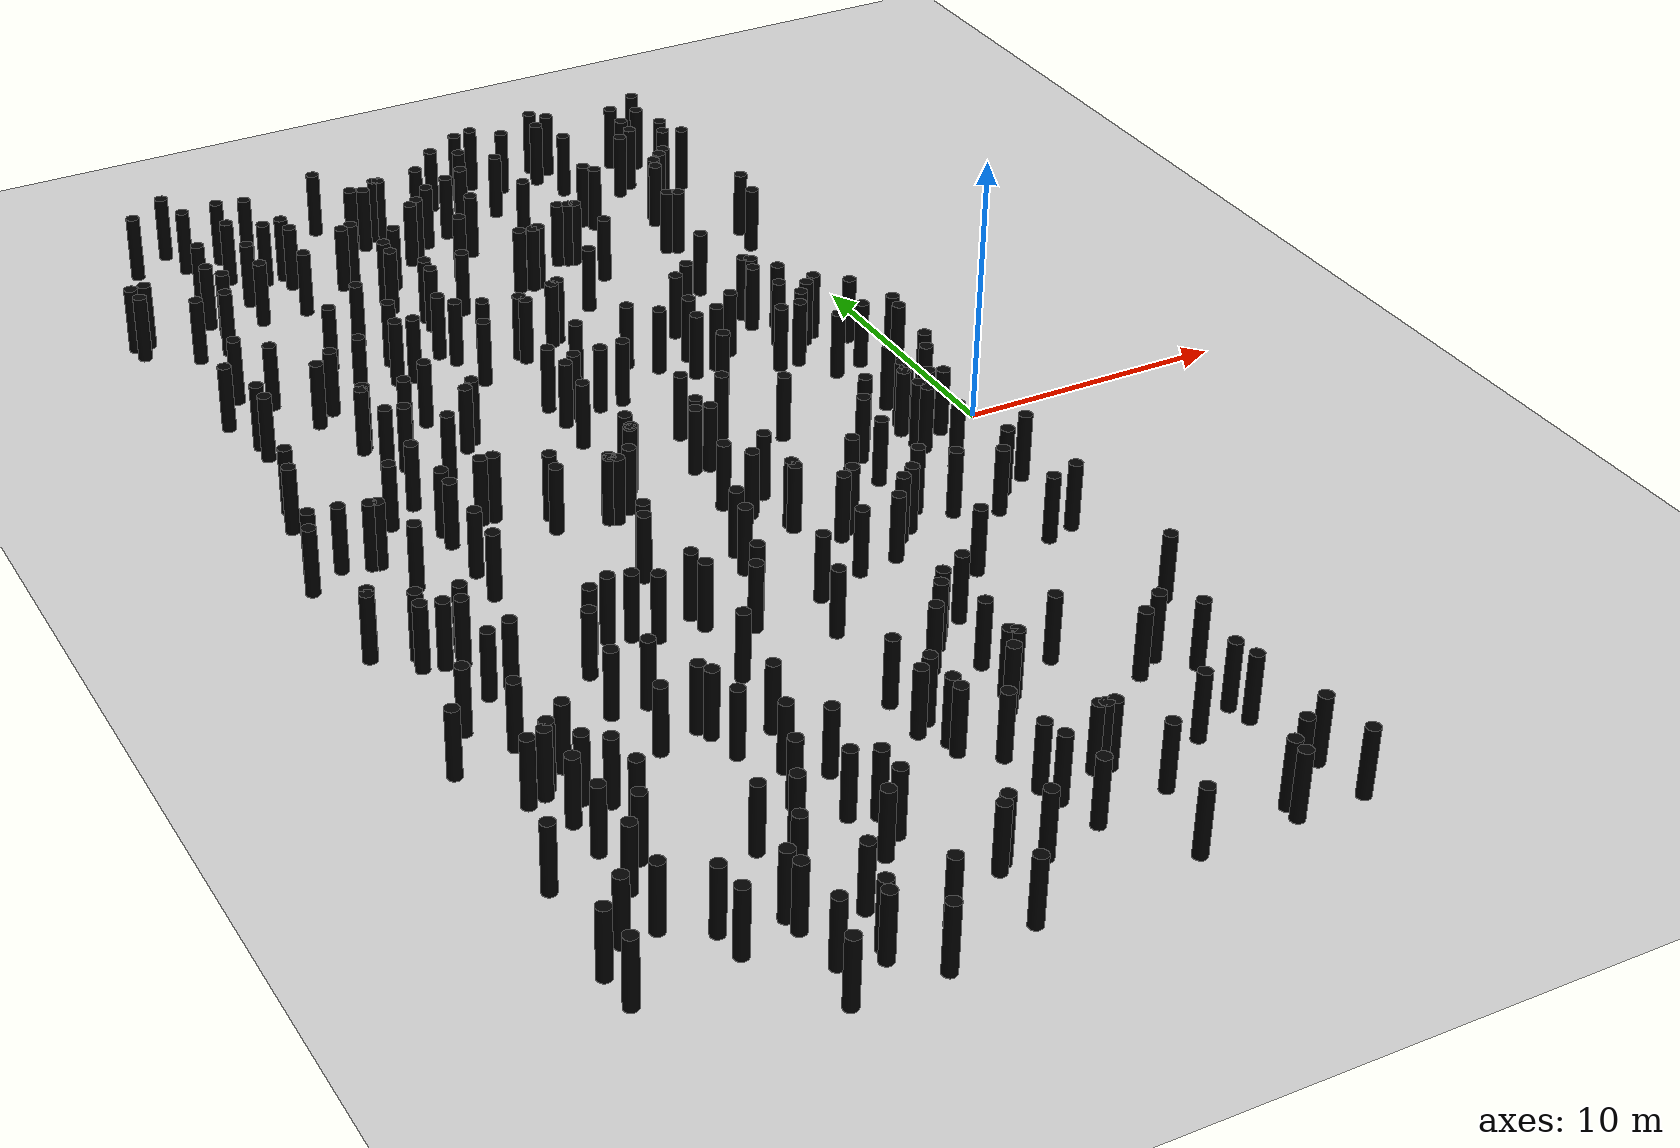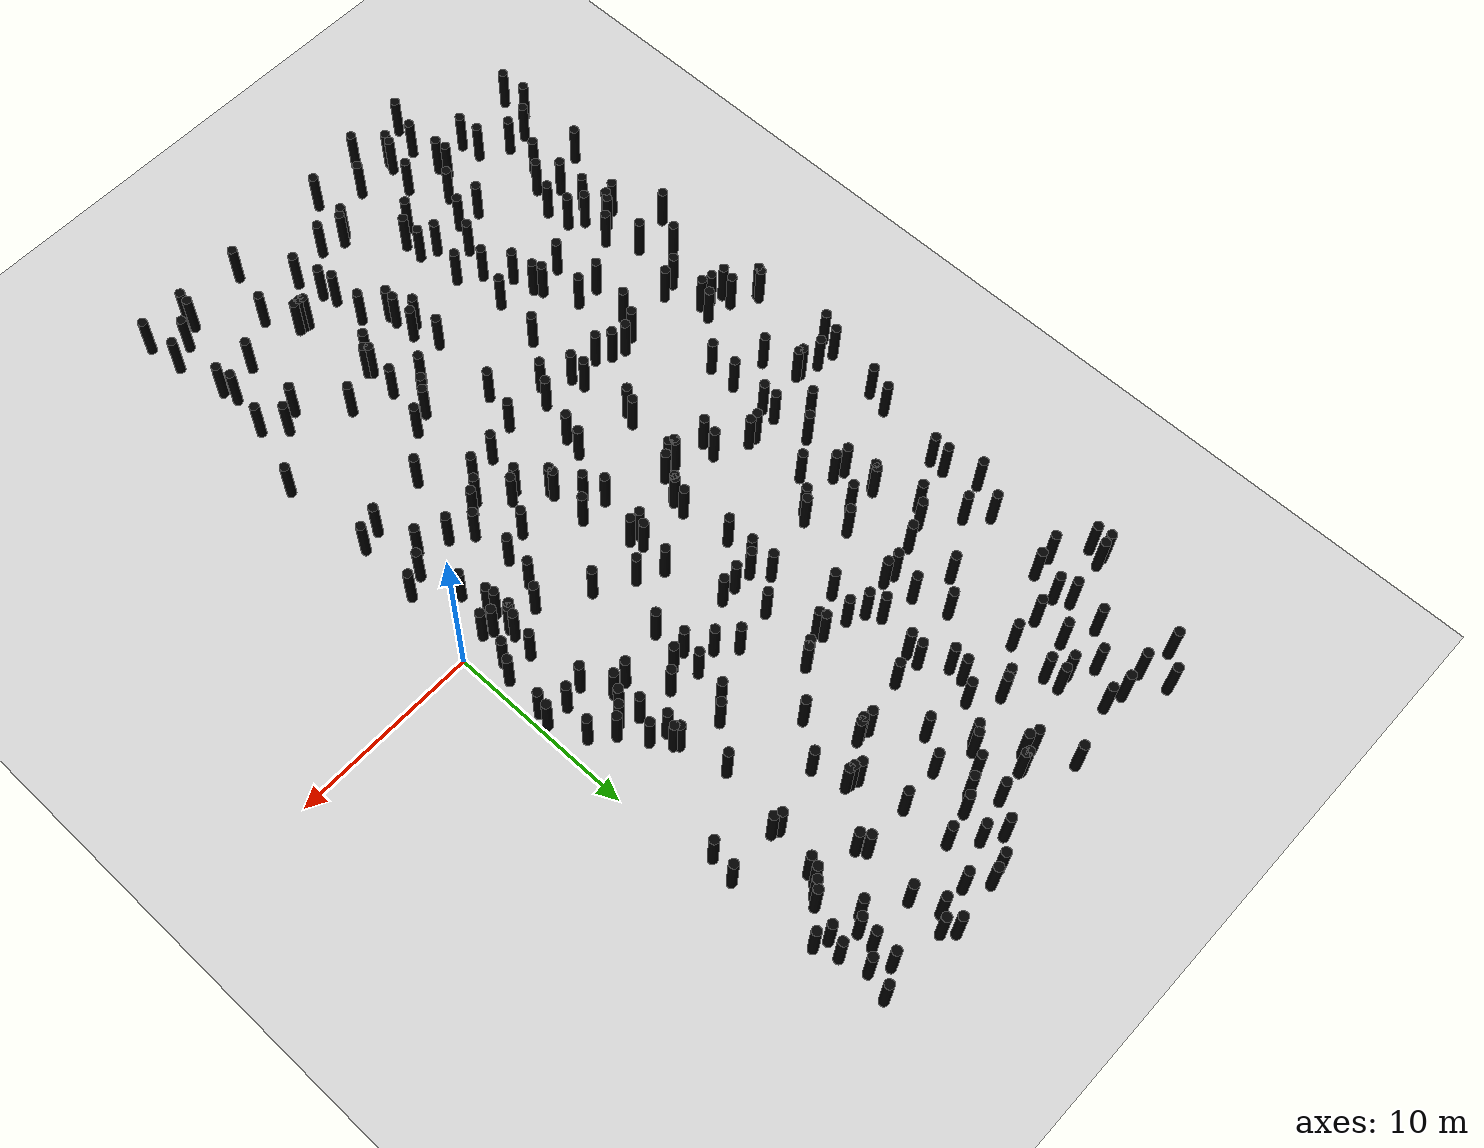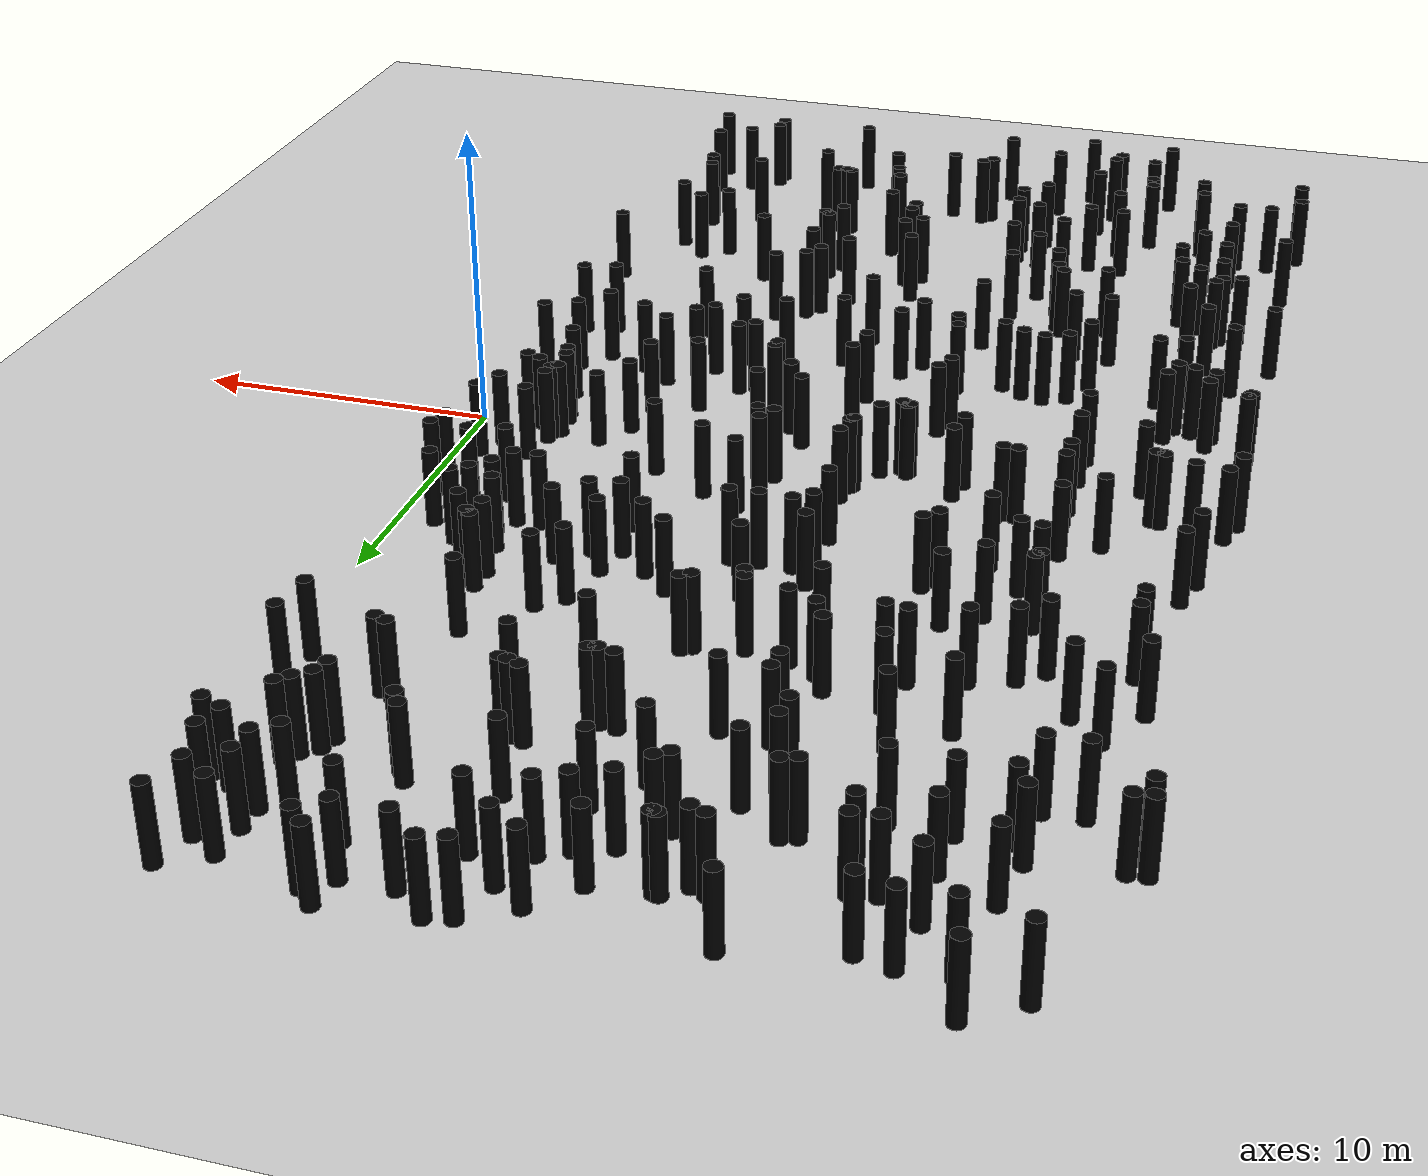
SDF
<sdf version="1.6">
 <world name="high">
  <include><uri>model://ground_plane</uri></include>
  <include><uri>model://pole</uri><name>pole1</name><pose>-8.35 -15.48 0 0 0 0</pose></include>
  <include><uri>model://pole</uri><name>pole4</name><pose>-0.87 -7.59 0 0 0 0</pose></include>
  <include><uri>model://pole</uri><name>pole8</name><pose>-23.48 -5.12 0 0 0 0</pose></include>
  <include><uri>model://pole</uri><name>pole13</name><pose>-24.23 18.35 0 0 0 0</pose></include>
  <include><uri>model://pole</uri><name>pole14</name><pose>-5.79 -5.25 0 0 0 0</pose></include>
  <include><uri>model://pole</uri><name>pole17</name><pose>-1.15 6.92 0 0 0 0</pose></include>
  <include><uri>model://pole</uri><name>pole18</name><pose>-8.4 24.65 0 0 0 0</pose></include>
  <include><uri>model://pole</uri><name>pole19</name><pose>-2.04 -0.08 0 0 0 0</pose></include>
  <include><uri>model://pole</uri><name>pole20</name><pose>-15.44 23.88 0 0 0 0</pose></include>
  <include><uri>model://pole</uri><name>pole21</name><pose>-22.67 -19.68 0 0 0 0</pose></include>
  <include><uri>model://pole</uri><name>pole22</name><pose>-4.96 -0.63 0 0 0 0</pose></include>
  <include><uri>model://pole</uri><name>pole25</name><pose>-1.55 21.11 0 0 0 0</pose></include>
  <include><uri>model://pole</uri><name>pole28</name><pose>-3.56 7.9 0 0 0 0</pose></include>
  <include><uri>model://pole</uri><name>pole31</name><pose>-18.16 -19.68 0 0 0 0</pose></include>
  <include><uri>model://pole</uri><name>pole32</name><pose>-23.18 9.73 0 0 0 0</pose></include>
  <include><uri>model://pole</uri><name>pole33</name><pose>-11.43 -13.46 0 0 0 0</pose></include>
  <include><uri>model://pole</uri><name>pole34</name><pose>-13.78 11.59 0 0 0 0</pose></include>
  <include><uri>model://pole</uri><name>pole37</name><pose>-21.96 -4.71 0 0 0 0</pose></include>
  <include><uri>model://pole</uri><name>pole39</name><pose>-3.6 6.24 0 0 0 0</pose></include>
  <include><uri>model://pole</uri><name>pole43</name><pose>-24.67 17.56 0 0 0 0</pose></include>
  <include><uri>model://pole</uri><name>pole44</name><pose>-8.38 8.1 0 0 0 0</pose></include>
  <include><uri>model://pole</uri><name>pole45</name><pose>-14.22 -0.27 0 0 0 0</pose></include>
  <include><uri>model://pole</uri><name>pole46</name><pose>-12.92 15.33 0 0 0 0</pose></include>
  <include><uri>model://pole</uri><name>pole47</name><pose>-11.46 -15.19 0 0 0 0</pose></include>
  <include><uri>model://pole</uri><name>pole50</name><pose>-8.43 19.59 0 0 0 0</pose></include>
  <include><uri>model://pole</uri><name>pole53</name><pose>-10.44 1.36 0 0 0 0</pose></include>
  <include><uri>model://pole</uri><name>pole55</name><pose>-2.54 23.84 0 0 0 0</pose></include>
  <include><uri>model://pole</uri><name>pole57</name><pose>-19.21 6.08 0 0 0 0</pose></include>
  <include><uri>model://pole</uri><name>pole59</name><pose>-13.0 1.24 0 0 0 0</pose></include>
  <include><uri>model://pole</uri><name>pole60</name><pose>-21.79 16.51 0 0 0 0</pose></include>
  <include><uri>model://pole</uri><name>pole61</name><pose>-5.17 -2.19 0 0 0 0</pose></include>
  <include><uri>model://pole</uri><name>pole62</name><pose>-15.35 -19.83 0 0 0 0</pose></include>
  <include><uri>model://pole</uri><name>pole66</name><pose>-16.51 11.59 0 0 0 0</pose></include>
  <include><uri>model://pole</uri><name>pole67</name><pose>-21.8 -11.77 0 0 0 0</pose></include>
  <include><uri>model://pole</uri><name>pole68</name><pose>-23.68 -8.76 0 0 0 0</pose></include>
  <include><uri>model://pole</uri><name>pole69</name><pose>-14.36 10.2 0 0 0 0</pose></include>
  <include><uri>model://pole</uri><name>pole70</name><pose>-8.08 17.21 0 0 0 0</pose></include>
  <include><uri>model://pole</uri><name>pole73</name><pose>-17.36 14.83 0 0 0 0</pose></include>
  <include><uri>model://pole</uri><name>pole77</name><pose>-12.44 11.32 0 0 0 0</pose></include>
  <include><uri>model://pole</uri><name>pole78</name><pose>-23.46 -12.91 0 0 0 0</pose></include>
  <include><uri>model://pole</uri><name>pole79</name><pose>-21.44 20.38 0 0 0 0</pose></include>
  <include><uri>model://pole</uri><name>pole80</name><pose>-22.76 13.07 0 0 0 0</pose></include>
  <include><uri>model://pole</uri><name>pole81</name><pose>-1.95 -7.9 0 0 0 0</pose></include>
  <include><uri>model://pole</uri><name>pole85</name><pose>-10.89 -16.54 0 0 0 0</pose></include>
  <include><uri>model://pole</uri><name>pole86</name><pose>-4.32 12.61 0 0 0 0</pose></include>
  <include><uri>model://pole</uri><name>pole89</name><pose>-17.62 -23.71 0 0 0 0</pose></include>
  <include><uri>model://pole</uri><name>pole92</name><pose>-19.61 23.33 0 0 0 0</pose></include>
  <include><uri>model://pole</uri><name>pole93</name><pose>-0.55 4.41 0 0 0 0</pose></include>
  <include><uri>model://pole</uri><name>pole94</name><pose>-7.23 -23.92 0 0 0 0</pose></include>
  <include><uri>model://pole</uri><name>pole98</name><pose>-3.85 9.35 0 0 0 0</pose></include>
  <include><uri>model://pole</uri><name>pole99</name><pose>-10.06 -2.01 0 0 0 0</pose></include>
  <include><uri>model://pole</uri><name>pole100</name><pose>-14.81 -15.65 0 0 0 0</pose></include>
  <include><uri>model://pole</uri><name>pole102</name><pose>-3.7 -23.83 0 0 0 0</pose></include>
  <include><uri>model://pole</uri><name>pole103</name><pose>-13.03 6.21 0 0 0 0</pose></include>
  <include><uri>model://pole</uri><name>pole104</name><pose>-7.36 7.12 0 0 0 0</pose></include>
  <include><uri>model://pole</uri><name>pole107</name><pose>-6.64 -2.75 0 0 0 0</pose></include>
  <include><uri>model://pole</uri><name>pole108</name><pose>-23.83 -19.75 0 0 0 0</pose></include>
  <include><uri>model://pole</uri><name>pole109</name><pose>-17.84 1.78 0 0 0 0</pose></include>
  <include><uri>model://pole</uri><name>pole113</name><pose>-19.84 21.61 0 0 0 0</pose></include>
  <include><uri>model://pole</uri><name>pole115</name><pose>-2.65 7.46 0 0 0 0</pose></include>
  <include><uri>model://pole</uri><name>pole116</name><pose>-14.8 -10.14 0 0 0 0</pose></include>
  <include><uri>model://pole</uri><name>pole118</name><pose>-22.6 -15.83 0 0 0 0</pose></include>
  <include><uri>model://pole</uri><name>pole119</name><pose>-10.72 19.42 0 0 0 0</pose></include>
  <include><uri>model://pole</uri><name>pole120</name><pose>-22.78 -5.3 0 0 0 0</pose></include>
  <include><uri>model://pole</uri><name>pole122</name><pose>-20.09 7.79 0 0 0 0</pose></include>
  <include><uri>model://pole</uri><name>pole123</name><pose>-4.23 0.51 0 0 0 0</pose></include>
  <include><uri>model://pole</uri><name>pole125</name><pose>-6.67 1.9 0 0 0 0</pose></include>
  <include><uri>model://pole</uri><name>pole126</name><pose>-19.8 -2.5 0 0 0 0</pose></include>
  <include><uri>model://pole</uri><name>pole127</name><pose>-9.15 24.47 0 0 0 0</pose></include>
  <include><uri>model://pole</uri><name>pole128</name><pose>-19.32 -10.05 0 0 0 0</pose></include>
  <include><uri>model://pole</uri><name>pole132</name><pose>-16.13 0.99 0 0 0 0</pose></include>
  <include><uri>model://pole</uri><name>pole134</name><pose>-12.59 -7.0 0 0 0 0</pose></include>
  <include><uri>model://pole</uri><name>pole136</name><pose>-12.45 -21.6 0 0 0 0</pose></include>
  <include><uri>model://pole</uri><name>pole139</name><pose>-21.23 -20.56 0 0 0 0</pose></include>
  <include><uri>model://pole</uri><name>pole140</name><pose>-23.61 1.24 0 0 0 0</pose></include>
  <include><uri>model://pole</uri><name>pole141</name><pose>-18.07 -10.08 0 0 0 0</pose></include>
  <include><uri>model://pole</uri><name>pole146</name><pose>-2.17 7.8 0 0 0 0</pose></include>
  <include><uri>model://pole</uri><name>pole148</name><pose>-11.71 22.45 0 0 0 0</pose></include>
  <include><uri>model://pole</uri><name>pole150</name><pose>-20.79 10.14 0 0 0 0</pose></include>
  <include><uri>model://pole</uri><name>pole154</name><pose>-7.57 -4.37 0 0 0 0</pose></include>
  <include><uri>model://pole</uri><name>pole155</name><pose>-5.13 24.44 0 0 0 0</pose></include>
  <include><uri>model://pole</uri><name>pole163</name><pose>-7.83 -13.03 0 0 0 0</pose></include>
  <include><uri>model://pole</uri><name>pole164</name><pose>-11.24 -21.97 0 0 0 0</pose></include>
  <include><uri>model://pole</uri><name>pole167</name><pose>-14.53 -19.11 0 0 0 0</pose></include>
  <include><uri>model://pole</uri><name>pole168</name><pose>-5.85 23.87 0 0 0 0</pose></include>
  <include><uri>model://pole</uri><name>pole170</name><pose>-12.34 10.98 0 0 0 0</pose></include>
  <include><uri>model://pole</uri><name>pole173</name><pose>-7.7 17.07 0 0 0 0</pose></include>
  <include><uri>model://pole</uri><name>pole174</name><pose>-17.16 11.67 0 0 0 0</pose></include>
  <include><uri>model://pole</uri><name>pole175</name><pose>-10.89 -14.77 0 0 0 0</pose></include>
  <include><uri>model://pole</uri><name>pole176</name><pose>-16.3 0.15 0 0 0 0</pose></include>
  <include><uri>model://pole</uri><name>pole177</name><pose>-3.07 18.95 0 0 0 0</pose></include>
  <include><uri>model://pole</uri><name>pole178</name><pose>-16.16 19.18 0 0 0 0</pose></include>
  <include><uri>model://pole</uri><name>pole180</name><pose>-13.11 4.68 0 0 0 0</pose></include>
  <include><uri>model://pole</uri><name>pole183</name><pose>-11.83 18.02 0 0 0 0</pose></include>
  <include><uri>model://pole</uri><name>pole188</name><pose>-5.14 -8.46 0 0 0 0</pose></include>
  <include><uri>model://pole</uri><name>pole189</name><pose>-15.02 -3.8 0 0 0 0</pose></include>
  <include><uri>model://pole</uri><name>pole190</name><pose>-2.97 9.07 0 0 0 0</pose></include>
  <include><uri>model://pole</uri><name>pole191</name><pose>-19.78 0.94 0 0 0 0</pose></include>
  <include><uri>model://pole</uri><name>pole192</name><pose>-7.45 17.01 0 0 0 0</pose></include>
  <include><uri>model://pole</uri><name>pole194</name><pose>-2.3 -2.5 0 0 0 0</pose></include>
  <include><uri>model://pole</uri><name>pole196</name><pose>-8.53 -11.54 0 0 0 0</pose></include>
  <include><uri>model://pole</uri><name>pole197</name><pose>-15.23 16.68 0 0 0 0</pose></include>
  <include><uri>model://pole</uri><name>pole200</name><pose>-2.68 -22.55 0 0 0 0</pose></include>
  <include><uri>model://pole</uri><name>pole202</name><pose>-21.38 17.92 0 0 0 0</pose></include>
  <include><uri>model://pole</uri><name>pole204</name><pose>-9.21 -3.42 0 0 0 0</pose></include>
  <include><uri>model://pole</uri><name>pole206</name><pose>-16.33 -24.93 0 0 0 0</pose></include>
  <include><uri>model://pole</uri><name>pole211</name><pose>-3.24 18.45 0 0 0 0</pose></include>
  <include><uri>model://pole</uri><name>pole215</name><pose>-14.66 21.96 0 0 0 0</pose></include>
  <include><uri>model://pole</uri><name>pole216</name><pose>-24.76 18.3 0 0 0 0</pose></include>
  <include><uri>model://pole</uri><name>pole217</name><pose>-2.52 -5.69 0 0 0 0</pose></include>
  <include><uri>model://pole</uri><name>pole219</name><pose>-21.72 -16.7 0 0 0 0</pose></include>
  <include><uri>model://pole</uri><name>pole220</name><pose>-10.99 11.61 0 0 0 0</pose></include>
  <include><uri>model://pole</uri><name>pole221</name><pose>-18.96 -23.3 0 0 0 0</pose></include>
  <include><uri>model://pole</uri><name>pole222</name><pose>-1.83 -16.16 0 0 0 0</pose></include>
  <include><uri>model://pole</uri><name>pole223</name><pose>-1.28 -23.84 0 0 0 0</pose></include>
  <include><uri>model://pole</uri><name>pole224</name><pose>-3.61 9.99 0 0 0 0</pose></include>
  <include><uri>model://pole</uri><name>pole225</name><pose>-9.51 15.93 0 0 0 0</pose></include>
  <include><uri>model://pole</uri><name>pole228</name><pose>-22.22 -5.45 0 0 0 0</pose></include>
  <include><uri>model://pole</uri><name>pole229</name><pose>-18.42 -6.73 0 0 0 0</pose></include>
  <include><uri>model://pole</uri><name>pole230</name><pose>-17.08 -12.36 0 0 0 0</pose></include>
  <include><uri>model://pole</uri><name>pole231</name><pose>-22.63 0.95 0 0 0 0</pose></include>
  <include><uri>model://pole</uri><name>pole232</name><pose>-15.24 -23.27 0 0 0 0</pose></include>
  <include><uri>model://pole</uri><name>pole235</name><pose>-12.51 6.63 0 0 0 0</pose></include>
  <include><uri>model://pole</uri><name>pole237</name><pose>-13.13 -24.33 0 0 0 0</pose></include>
  <include><uri>model://pole</uri><name>pole240</name><pose>-16.89 -6.61 0 0 0 0</pose></include>
  <include><uri>model://pole</uri><name>pole244</name><pose>-3.65 -23.25 0 0 0 0</pose></include>
  <include><uri>model://pole</uri><name>pole245</name><pose>-10.96 21.25 0 0 0 0</pose></include>
  <include><uri>model://pole</uri><name>pole247</name><pose>-11.49 8.57 0 0 0 0</pose></include>
  <include><uri>model://pole</uri><name>pole249</name><pose>-7.72 -19.16 0 0 0 0</pose></include>
  <include><uri>model://pole</uri><name>pole250</name><pose>-13.39 22.23 0 0 0 0</pose></include>
  <include><uri>model://pole</uri><name>pole251</name><pose>-5.0 -4.32 0 0 0 0</pose></include>
  <include><uri>model://pole</uri><name>pole252</name><pose>-18.14 18.03 0 0 0 0</pose></include>
  <include><uri>model://pole</uri><name>pole253</name><pose>-18.65 20.87 0 0 0 0</pose></include>
  <include><uri>model://pole</uri><name>pole255</name><pose>-17.45 -23.23 0 0 0 0</pose></include>
  <include><uri>model://pole</uri><name>pole257</name><pose>-19.78 19.64 0 0 0 0</pose></include>
  <include><uri>model://pole</uri><name>pole260</name><pose>-21.25 -13.96 0 0 0 0</pose></include>
  <include><uri>model://pole</uri><name>pole261</name><pose>-16.84 13.07 0 0 0 0</pose></include>
  <include><uri>model://pole</uri><name>pole267</name><pose>-24.62 -16.74 0 0 0 0</pose></include>
  <include><uri>model://pole</uri><name>pole268</name><pose>-12.77 2.09 0 0 0 0</pose></include>
  <include><uri>model://pole</uri><name>pole269</name><pose>-17.31 -18.03 0 0 0 0</pose></include>
  <include><uri>model://pole</uri><name>pole271</name><pose>-2.76 -0.64 0 0 0 0</pose></include>
  <include><uri>model://pole</uri><name>pole273</name><pose>-9.06 -21.4 0 0 0 0</pose></include>
  <include><uri>model://pole</uri><name>pole276</name><pose>-7.51 -19.22 0 0 0 0</pose></include>
  <include><uri>model://pole</uri><name>pole278</name><pose>-16.85 -13.59 0 0 0 0</pose></include>
  <include><uri>model://pole</uri><name>pole279</name><pose>-22.62 -10.16 0 0 0 0</pose></include>
  <include><uri>model://pole</uri><name>pole280</name><pose>-0.87 14.9 0 0 0 0</pose></include>
  <include><uri>model://pole</uri><name>pole283</name><pose>-21.38 -7.19 0 0 0 0</pose></include>
  <include><uri>model://pole</uri><name>pole284</name><pose>-17.07 -21.61 0 0 0 0</pose></include>
  <include><uri>model://pole</uri><name>pole287</name><pose>-7.39 23.85 0 0 0 0</pose></include>
  <include><uri>model://pole</uri><name>pole288</name><pose>-7.05 8.34 0 0 0 0</pose></include>
  <include><uri>model://pole</uri><name>pole290</name><pose>-1.65 5.13 0 0 0 0</pose></include>
  <include><uri>model://pole</uri><name>pole298</name><pose>-22.59 -17.79 0 0 0 0</pose></include>
  <include><uri>model://pole</uri><name>pole301</name><pose>-17.9 20.97 0 0 0 0</pose></include>
  <include><uri>model://pole</uri><name>pole303</name><pose>-3.49 16.05 0 0 0 0</pose></include>
  <include><uri>model://pole</uri><name>pole304</name><pose>-10.15 21.67 0 0 0 0</pose></include>
  <include><uri>model://pole</uri><name>pole307</name><pose>-0.66 -4.18 0 0 0 0</pose></include>
  <include><uri>model://pole</uri><name>pole308</name><pose>-13.13 7.45 0 0 0 0</pose></include>
  <include><uri>model://pole</uri><name>pole309</name><pose>-14.54 -7.15 0 0 0 0</pose></include>
  <include><uri>model://pole</uri><name>pole310</name><pose>-1.28 21.93 0 0 0 0</pose></include>
  <include><uri>model://pole</uri><name>pole314</name><pose>-4.01 -19.29 0 0 0 0</pose></include>
  <include><uri>model://pole</uri><name>pole315</name><pose>-17.31 -11.91 0 0 0 0</pose></include>
  <include><uri>model://pole</uri><name>pole317</name><pose>-10.26 15.96 0 0 0 0</pose></include>
  <include><uri>model://pole</uri><name>pole318</name><pose>-22.61 -12.43 0 0 0 0</pose></include>
  <include><uri>model://pole</uri><name>pole319</name><pose>-20.04 10.75 0 0 0 0</pose></include>
  <include><uri>model://pole</uri><name>pole320</name><pose>-8.12 -10.99 0 0 0 0</pose></include>
  <include><uri>model://pole</uri><name>pole322</name><pose>-21.36 24.64 0 0 0 0</pose></include>
  <include><uri>model://pole</uri><name>pole323</name><pose>-2.82 0.27 0 0 0 0</pose></include>
  <include><uri>model://pole</uri><name>pole325</name><pose>-1.52 -21.92 0 0 0 0</pose></include>
  <include><uri>model://pole</uri><name>pole326</name><pose>-9.85 3.6 0 0 0 0</pose></include>
  <include><uri>model://pole</uri><name>pole327</name><pose>-3.87 16.21 0 0 0 0</pose></include>
  <include><uri>model://pole</uri><name>pole329</name><pose>-21.74 18.67 0 0 0 0</pose></include>
  <include><uri>model://pole</uri><name>pole331</name><pose>-19.76 1.72 0 0 0 0</pose></include>
  <include><uri>model://pole</uri><name>pole333</name><pose>-8.57 2.95 0 0 0 0</pose></include>
  <include><uri>model://pole</uri><name>pole334</name><pose>-15.17 17.45 0 0 0 0</pose></include>
  <include><uri>model://pole</uri><name>pole335</name><pose>-14.68 12.01 0 0 0 0</pose></include>
  <include><uri>model://pole</uri><name>pole336</name><pose>-14.68 -6.41 0 0 0 0</pose></include>
  <include><uri>model://pole</uri><name>pole339</name><pose>-6.44 7.33 0 0 0 0</pose></include>
  <include><uri>model://pole</uri><name>pole340</name><pose>-7.11 -10.51 0 0 0 0</pose></include>
  <include><uri>model://pole</uri><name>pole341</name><pose>-23.2 8.91 0 0 0 0</pose></include>
  <include><uri>model://pole</uri><name>pole342</name><pose>-7.09 -6.56 0 0 0 0</pose></include>
  <include><uri>model://pole</uri><name>pole345</name><pose>-3.18 6.93 0 0 0 0</pose></include>
  <include><uri>model://pole</uri><name>pole351</name><pose>-23.84 5.38 0 0 0 0</pose></include>
  <include><uri>model://pole</uri><name>pole352</name><pose>-10.69 11.78 0 0 0 0</pose></include>
  <include><uri>model://pole</uri><name>pole357</name><pose>-12.91 1.36 0 0 0 0</pose></include>
  <include><uri>model://pole</uri><name>pole360</name><pose>-11.97 20.85 0 0 0 0</pose></include>
  <include><uri>model://pole</uri><name>pole361</name><pose>-9.61 23.04 0 0 0 0</pose></include>
  <include><uri>model://pole</uri><name>pole362</name><pose>-19.23 -20.87 0 0 0 0</pose></include>
  <include><uri>model://pole</uri><name>pole364</name><pose>-18.57 23.09 0 0 0 0</pose></include>
  <include><uri>model://pole</uri><name>pole365</name><pose>-6.3 -20.9 0 0 0 0</pose></include>
  <include><uri>model://pole</uri><name>pole368</name><pose>-24.16 4.21 0 0 0 0</pose></include>
  <include><uri>model://pole</uri><name>pole369</name><pose>-19.96 7.97 0 0 0 0</pose></include>
  <include><uri>model://pole</uri><name>pole372</name><pose>-13.6 0.12 0 0 0 0</pose></include>
  <include><uri>model://pole</uri><name>pole376</name><pose>-0.64 16.25 0 0 0 0</pose></include>
  <include><uri>model://pole</uri><name>pole377</name><pose>-7.02 15.33 0 0 0 0</pose></include>
  <include><uri>model://pole</uri><name>pole379</name><pose>-9.28 8.91 0 0 0 0</pose></include>
  <include><uri>model://pole</uri><name>pole380</name><pose>-15.72 19.33 0 0 0 0</pose></include>
  <include><uri>model://pole</uri><name>pole382</name><pose>-5.9 10.74 0 0 0 0</pose></include>
  <include><uri>model://pole</uri><name>pole383</name><pose>-23.35 -4.45 0 0 0 0</pose></include>
  <include><uri>model://pole</uri><name>pole384</name><pose>-24.63 1.36 0 0 0 0</pose></include>
  <include><uri>model://pole</uri><name>pole385</name><pose>-1.64 23.29 0 0 0 0</pose></include>
  <include><uri>model://pole</uri><name>pole386</name><pose>-21.09 -21.69 0 0 0 0</pose></include>
  <include><uri>model://pole</uri><name>pole389</name><pose>-2.69 21.81 0 0 0 0</pose></include>
  <include><uri>model://pole</uri><name>pole390</name><pose>-1.7 -4.68 0 0 0 0</pose></include>
  <include><uri>model://pole</uri><name>pole392</name><pose>-12.72 20.07 0 0 0 0</pose></include>
  <include><uri>model://pole</uri><name>pole394</name><pose>-18.53 -17.89 0 0 0 0</pose></include>
  <include><uri>model://pole</uri><name>pole396</name><pose>-16.84 6.25 0 0 0 0</pose></include>
  <include><uri>model://pole</uri><name>pole397</name><pose>-8.58 -6.75 0 0 0 0</pose></include>
  <include><uri>model://pole</uri><name>pole398</name><pose>-2.79 4.85 0 0 0 0</pose></include>
  <include><uri>model://pole</uri><name>pole402</name><pose>-24.74 -3.88 0 0 0 0</pose></include>
  <include><uri>model://pole</uri><name>pole403</name><pose>-18.12 4.88 0 0 0 0</pose></include>
  <include><uri>model://pole</uri><name>pole407</name><pose>-21.78 12.11 0 0 0 0</pose></include>
  <include><uri>model://pole</uri><name>pole409</name><pose>-3.34 21.35 0 0 0 0</pose></include>
  <include><uri>model://pole</uri><name>pole410</name><pose>-22.37 0.89 0 0 0 0</pose></include>
  <include><uri>model://pole</uri><name>pole413</name><pose>-24.85 -20.74 0 0 0 0</pose></include>
  <include><uri>model://pole</uri><name>pole414</name><pose>-15.92 -14.86 0 0 0 0</pose></include>
  <include><uri>model://pole</uri><name>pole417</name><pose>-21.83 -0.87 0 0 0 0</pose></include>
  <include><uri>model://pole</uri><name>pole421</name><pose>-0.85 20.82 0 0 0 0</pose></include>
  <include><uri>model://pole</uri><name>pole422</name><pose>-24.65 -3.66 0 0 0 0</pose></include>
  <include><uri>model://pole</uri><name>pole424</name><pose>-14.41 18.32 0 0 0 0</pose></include>
  <include><uri>model://pole</uri><name>pole425</name><pose>-13.08 19.81 0 0 0 0</pose></include>
  <include><uri>model://pole</uri><name>pole427</name><pose>-5.52 8.02 0 0 0 0</pose></include>
  <include><uri>model://pole</uri><name>pole428</name><pose>-18.89 13.71 0 0 0 0</pose></include>
  <include><uri>model://pole</uri><name>pole430</name><pose>-15.29 -12.93 0 0 0 0</pose></include>
  <include><uri>model://pole</uri><name>pole433</name><pose>-7.14 5.54 0 0 0 0</pose></include>
  <include><uri>model://pole</uri><name>pole434</name><pose>-19.85 6.24 0 0 0 0</pose></include>
  <include><uri>model://pole</uri><name>pole440</name><pose>-17.64 -6.4 0 0 0 0</pose></include>
  <include><uri>model://pole</uri><name>pole441</name><pose>-2.56 0.82 0 0 0 0</pose></include>
  <include><uri>model://pole</uri><name>pole443</name><pose>-0.77 2.25 0 0 0 0</pose></include>
  <include><uri>model://pole</uri><name>pole446</name><pose>-16.53 -16.51 0 0 0 0</pose></include>
  <include><uri>model://pole</uri><name>pole448</name><pose>-2.3 19.65 0 0 0 0</pose></include>
  <include><uri>model://pole</uri><name>pole449</name><pose>-7.19 -19.23 0 0 0 0</pose></include>
  <include><uri>model://pole</uri><name>pole451</name><pose>-15.05 12.72 0 0 0 0</pose></include>
  <include><uri>model://pole</uri><name>pole453</name><pose>-19.15 -21.51 0 0 0 0</pose></include>
  <include><uri>model://pole</uri><name>pole457</name><pose>-17.41 8.51 0 0 0 0</pose></include>
  <include><uri>model://pole</uri><name>pole459</name><pose>-8.5 22.04 0 0 0 0</pose></include>
  <include><uri>model://pole</uri><name>pole460</name><pose>-2.62 19.33 0 0 0 0</pose></include>
  <include><uri>model://pole</uri><name>pole463</name><pose>-18.5 7.75 0 0 0 0</pose></include>
  <include><uri>model://pole</uri><name>pole464</name><pose>-1.55 -0.3 0 0 0 0</pose></include>
  <include><uri>model://pole</uri><name>pole466</name><pose>-5.73 -13.76 0 0 0 0</pose></include>
  <include><uri>model://pole</uri><name>pole467</name><pose>-23.71 11.44 0 0 0 0</pose></include>
  <include><uri>model://pole</uri><name>pole468</name><pose>-14.48 -0.15 0 0 0 0</pose></include>
  <include><uri>model://pole</uri><name>pole470</name><pose>-10.13 1.94 0 0 0 0</pose></include>
  <include><uri>model://pole</uri><name>pole471</name><pose>-10.44 -7.45 0 0 0 0</pose></include>
  <include><uri>model://pole</uri><name>pole472</name><pose>-21.02 23.21 0 0 0 0</pose></include>
  <include><uri>model://pole</uri><name>pole473</name><pose>-4.39 6.21 0 0 0 0</pose></include>
  <include><uri>model://pole</uri><name>pole474</name><pose>-10.58 6.65 0 0 0 0</pose></include>
  <include><uri>model://pole</uri><name>pole475</name><pose>-10.66 -1.11 0 0 0 0</pose></include>
  <include><uri>model://pole</uri><name>pole476</name><pose>-8.59 13.45 0 0 0 0</pose></include>
  <include><uri>model://pole</uri><name>pole478</name><pose>-18.3 1.8 0 0 0 0</pose></include>
  <include><uri>model://pole</uri><name>pole480</name><pose>-16.43 6.65 0 0 0 0</pose></include>
  <include><uri>model://pole</uri><name>pole484</name><pose>-17.86 20.16 0 0 0 0</pose></include>
  <include><uri>model://pole</uri><name>pole486</name><pose>-19.77 -1.0 0 0 0 0</pose></include>
  <include><uri>model://pole</uri><name>pole489</name><pose>-9.78 -17.41 0 0 0 0</pose></include>
  <include><uri>model://pole</uri><name>pole490</name><pose>-19.87 18.03 0 0 0 0</pose></include>
  <include><uri>model://pole</uri><name>pole494</name><pose>-5.64 24.94 0 0 0 0</pose></include>
  <include><uri>model://pole</uri><name>pole496</name><pose>-11.48 6.61 0 0 0 0</pose></include>
  <include><uri>model://pole</uri><name>pole497</name><pose>-18.82 -12.37 0 0 0 0</pose></include>
  <include><uri>model://pole</uri><name>pole501</name><pose>-19.45 -24.9 0 0 0 0</pose></include>
  <include><uri>model://pole</uri><name>pole504</name><pose>-9.43 -19.95 0 0 0 0</pose></include>
  <include><uri>model://pole</uri><name>pole505</name><pose>-13.54 22.28 0 0 0 0</pose></include>
  <include><uri>model://pole</uri><name>pole506</name><pose>-14.73 -3.15 0 0 0 0</pose></include>
  <include><uri>model://pole</uri><name>pole512</name><pose>-9.32 -12.54 0 0 0 0</pose></include>
  <include><uri>model://pole</uri><name>pole513</name><pose>-1.22 1.41 0 0 0 0</pose></include>
  <include><uri>model://pole</uri><name>pole515</name><pose>-22.67 -14.29 0 0 0 0</pose></include>
  <include><uri>model://pole</uri><name>pole516</name><pose>-18.98 -7.84 0 0 0 0</pose></include>
  <include><uri>model://pole</uri><name>pole520</name><pose>-5.49 19.27 0 0 0 0</pose></include>
  <include><uri>model://pole</uri><name>pole526</name><pose>-21.14 2.87 0 0 0 0</pose></include>
  <include><uri>model://pole</uri><name>pole529</name><pose>-11.89 -4.9 0 0 0 0</pose></include>
  <include><uri>model://pole</uri><name>pole532</name><pose>-1.22 24.55 0 0 0 0</pose></include>
  <include><uri>model://pole</uri><name>pole533</name><pose>-14.43 -0.02 0 0 0 0</pose></include>
  <include><uri>model://pole</uri><name>pole536</name><pose>-10.99 -9.41 0 0 0 0</pose></include>
  <include><uri>model://pole</uri><name>pole539</name><pose>-2.65 -1.05 0 0 0 0</pose></include>
  <include><uri>model://pole</uri><name>pole540</name><pose>-22.23 -7.42 0 0 0 0</pose></include>
  <include><uri>model://pole</uri><name>pole541</name><pose>-15.39 -17.72 0 0 0 0</pose></include>
  <include><uri>model://pole</uri><name>pole546</name><pose>-7.99 -14.67 0 0 0 0</pose></include>
  <include><uri>model://pole</uri><name>pole547</name><pose>-18.77 11.2 0 0 0 0</pose></include>
  <include><uri>model://pole</uri><name>pole548</name><pose>-2.36 2.05 0 0 0 0</pose></include>
  <include><uri>model://pole</uri><name>pole553</name><pose>-22.93 16.43 0 0 0 0</pose></include>
  <include><uri>model://pole</uri><name>pole556</name><pose>-6.35 -5.62 0 0 0 0</pose></include>
  <include><uri>model://pole</uri><name>pole557</name><pose>-0.4 5.1 0 0 0 0</pose></include>
  <include><uri>model://pole</uri><name>pole558</name><pose>-6.66 10.11 0 0 0 0</pose></include>
  <include><uri>model://pole</uri><name>pole559</name><pose>-10.55 23.65 0 0 0 0</pose></include>
  <include><uri>model://pole</uri><name>pole561</name><pose>-9.75 15.86 0 0 0 0</pose></include>
  <include><uri>model://pole</uri><name>pole562</name><pose>-21.08 -15.26 0 0 0 0</pose></include>
  <include><uri>model://pole</uri><name>pole563</name><pose>-3.97 -5.08 0 0 0 0</pose></include>
  <include><uri>model://pole</uri><name>pole565</name><pose>-9.89 1.3 0 0 0 0</pose></include>
  <include><uri>model://pole</uri><name>pole570</name><pose>-2.06 -19.24 0 0 0 0</pose></include>
  <include><uri>model://pole</uri><name>pole572</name><pose>-11.66 -3.86 0 0 0 0</pose></include>
  <include><uri>model://pole</uri><name>pole573</name><pose>-22.85 23.6 0 0 0 0</pose></include>
  <include><uri>model://pole</uri><name>pole576</name><pose>-14.38 15.44 0 0 0 0</pose></include>
  <include><uri>model://pole</uri><name>pole578</name><pose>-12.78 -21.9 0 0 0 0</pose></include>
  <include><uri>model://pole</uri><name>pole579</name><pose>-2.64 22.67 0 0 0 0</pose></include>
  <include><uri>model://pole</uri><name>pole582</name><pose>-14.44 14.75 0 0 0 0</pose></include>
  <include><uri>model://pole</uri><name>pole588</name><pose>-5.3 22.49 0 0 0 0</pose></include>
  <include><uri>model://pole</uri><name>pole589</name><pose>-9.19 -3.13 0 0 0 0</pose></include>
  <include><uri>model://pole</uri><name>pole591</name><pose>-21.96 -13.43 0 0 0 0</pose></include>
  <include><uri>model://pole</uri><name>pole593</name><pose>-24.82 -10.59 0 0 0 0</pose></include>
  <include><uri>model://pole</uri><name>pole595</name><pose>-0.56 -12.57 0 0 0 0</pose></include>
  <include><uri>model://pole</uri><name>pole596</name><pose>-7.81 -14.85 0 0 0 0</pose></include>
  <include><uri>model://pole</uri><name>pole598</name><pose>-9.16 -1.15 0 0 0 0</pose></include>
  <include><uri>model://pole</uri><name>pole601</name><pose>-19.98 3.69 0 0 0 0</pose></include>
  <include><uri>model://pole</uri><name>pole602</name><pose>-5.77 19.72 0 0 0 0</pose></include>
  <include><uri>model://pole</uri><name>pole604</name><pose>-10.86 -16.01 0 0 0 0</pose></include>
  <include><uri>model://pole</uri><name>pole606</name><pose>-14.2 21.77 0 0 0 0</pose></include>
  <include><uri>model://pole</uri><name>pole607</name><pose>-22.84 -12.75 0 0 0 0</pose></include>
  <include><uri>model://pole</uri><name>pole610</name><pose>-16.16 -7.06 0 0 0 0</pose></include>
  <include><uri>model://pole</uri><name>pole612</name><pose>-9.66 -19.18 0 0 0 0</pose></include>
  <include><uri>model://pole</uri><name>pole615</name><pose>-14.55 -18.08 0 0 0 0</pose></include>
  <include><uri>model://pole</uri><name>pole616</name><pose>-2.25 -18.41 0 0 0 0</pose></include>
  <include><uri>model://pole</uri><name>pole618</name><pose>-3.74 -15.8 0 0 0 0</pose></include>
  <include><uri>model://pole</uri><name>pole621</name><pose>-2.82 -15.19 0 0 0 0</pose></include>
  <include><uri>model://pole</uri><name>pole622</name><pose>-8.07 -4.66 0 0 0 0</pose></include>
  <include><uri>model://pole</uri><name>pole629</name><pose>-3.8 10.18 0 0 0 0</pose></include>
  <include><uri>model://pole</uri><name>pole631</name><pose>-13.16 -7.96 0 0 0 0</pose></include>
  <include><uri>model://pole</uri><name>pole632</name><pose>-24.94 0.44 0 0 0 0</pose></include>
  <include><uri>model://pole</uri><name>pole635</name><pose>-24.74 -22.15 0 0 0 0</pose></include>
  <include><uri>model://pole</uri><name>pole637</name><pose>-2.63 0.41 0 0 0 0</pose></include>
 </world>
</sdf>
